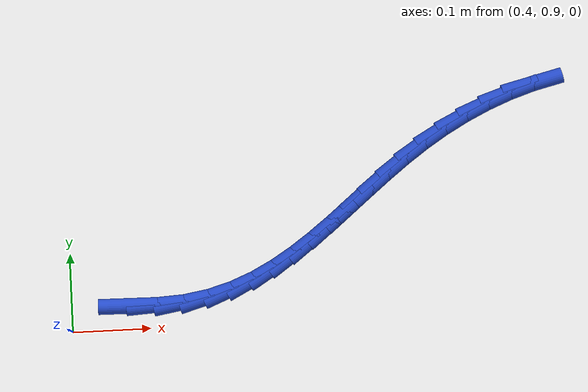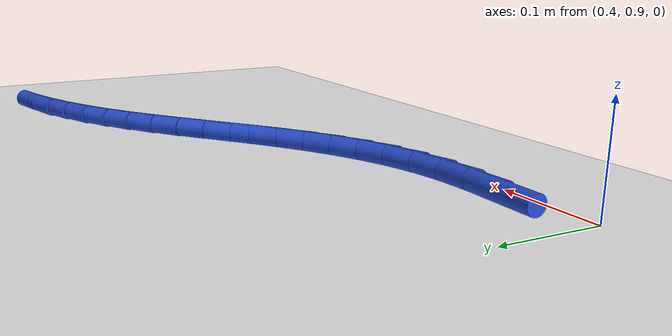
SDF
<sdf version="1.6">
 <world name="default">
  <model name="ground_plane">
   <static>1</static>
   <link name="link">
    <collision name="collision">
     <geometry><plane><normal>0 0 1</normal><size>100 100</size></plane></geometry>
     <surface><friction><ode><mu>100</mu><mu2>50</mu2></ode></friction></surface>
    </collision>
    <visual name="visual">
     <cast_shadows>0</cast_shadows>
     <geometry><plane><normal>0 0 1</normal><size>100 100</size></plane></geometry>
     <material>
      <script><uri>file://media/materials/scripts/gazebo.material</uri><name>Gazebo/WhiteGlow</name></script>
     </material>
    </visual>
   </link>
  </model>
  <model name="line">
   <link name="link_38">
    <pose>0.47411625837136084 0.9295470243335275 0.01 0 1.57 -0.01450029435183917</pose>
    <collision name="collision">
     <geometry><cylinder><radius>0.01</radius><length>0.08</length></cylinder></geometry>
    </collision>
    <visual name="visual">
     <material>
      <script><name>Gazebo/Blue</name><uri>file://media/materials/scripts/gazebo.material</uri></script>
     </material>
     <geometry><cylinder><radius>0.01</radius><length>0.08</length></cylinder></geometry>
    </visual>
   </link>
   <link name="link_39">
    <pose>0.5096491783543373 0.9290317504205082 0.01 0 1.57 0.05441502153179256</pose>
    <collision name="collision">
     <geometry><cylinder><radius>0.01</radius><length>0.08</length></cylinder></geometry>
    </collision>
    <visual name="visual">
     <material>
      <script><name>Gazebo/Blue</name><uri>file://media/materials/scripts/gazebo.material</uri></script>
     </material>
     <geometry><cylinder><radius>0.01</radius><length>0.08</length></cylinder></geometry>
    </visual>
   </link>
   <link name="link_40">
    <pose>0.5440150556973586 0.9309036182710717 0.01 0 1.57 0.16369060617507925</pose>
    <collision name="collision">
     <geometry><cylinder><radius>0.01</radius><length>0.08</length></cylinder></geometry>
    </collision>
    <visual name="visual">
     <material>
      <script><name>Gazebo/Blue</name><uri>file://media/materials/scripts/gazebo.material</uri></script>
     </material>
     <geometry><cylinder><radius>0.01</radius><length>0.08</length></cylinder></geometry>
    </visual>
   </link>
   <link name="link_41">
    <pose>0.5762229499386853 0.936223346449041 0.01 0 1.57 0.2773982860629447</pose>
    <collision name="collision">
     <geometry><cylinder><radius>0.01</radius><length>0.08</length></cylinder></geometry>
    </collision>
    <visual name="visual">
     <material>
      <script><name>Gazebo/Blue</name><uri>file://media/materials/scripts/gazebo.material</uri></script>
     </material>
     <geometry><cylinder><radius>0.01</radius><length>0.08</length></cylinder></geometry>
    </visual>
   </link>
   <link name="link_42">
    <pose>0.6063698418677874 0.9448073598574593 0.01 0 1.57 0.3830366115178532</pose>
    <collision name="collision">
     <geometry><cylinder><radius>0.01</radius><length>0.08</length></cylinder></geometry>
    </collision>
    <visual name="visual">
     <material>
      <script><name>Gazebo/Blue</name><uri>file://media/materials/scripts/gazebo.material</uri></script>
     </material>
     <geometry><cylinder><radius>0.01</radius><length>0.08</length></cylinder></geometry>
    </visual>
   </link>
   <link name="link_43">
    <pose>0.6347523489316713 0.9562437519579621 0.01 0 1.57 0.4760385590974551</pose>
    <collision name="collision">
     <geometry><cylinder><radius>0.01</radius><length>0.08</length></cylinder></geometry>
    </collision>
    <visual name="visual">
     <material>
      <script><name>Gazebo/Blue</name><uri>file://media/materials/scripts/gazebo.material</uri></script>
     </material>
     <geometry><cylinder><radius>0.01</radius><length>0.08</length></cylinder></geometry>
    </visual>
   </link>
   <link name="link_44">
    <pose>0.6616670885773418 0.9701206162121828 0.01 0 1.57 0.5534342682229622</pose>
    <collision name="collision">
     <geometry><cylinder><radius>0.01</radius><length>0.08</length></cylinder></geometry>
    </collision>
    <visual name="visual">
     <material>
      <script><name>Gazebo/Blue</name><uri>file://media/materials/scripts/gazebo.material</uri></script>
     </material>
     <geometry><cylinder><radius>0.01</radius><length>0.08</length></cylinder></geometry>
    </visual>
   </link>
   <link name="link_45">
    <pose>0.6874106782518049 0.9860260460817564 0.01 0 1.57 0.6137891139172305</pose>
    <collision name="collision">
     <geometry><cylinder><radius>0.01</radius><length>0.08</length></cylinder></geometry>
    </collision>
    <visual name="visual">
     <material>
      <script><name>Gazebo/Blue</name><uri>file://media/materials/scripts/gazebo.material</uri></script>
     </material>
     <geometry><cylinder><radius>0.01</radius><length>0.08</length></cylinder></geometry>
    </visual>
   </link>
   <link name="link_46">
    <pose>0.7122797354020655 1.0035481350283162 0.01 0 1.57 0.6567641380929898</pose>
    <collision name="collision">
     <geometry><cylinder><radius>0.01</radius><length>0.08</length></cylinder></geometry>
    </collision>
    <visual name="visual">
     <material>
      <script><name>Gazebo/Blue</name><uri>file://media/materials/scripts/gazebo.material</uri></script>
     </material>
     <geometry><cylinder><radius>0.01</radius><length>0.08</length></cylinder></geometry>
    </visual>
   </link>
   <link name="link_47">
    <pose>0.7365708774751294 1.022274976513497 0.01 0 1.57 0.6826097325852077</pose>
    <collision name="collision">
     <geometry><cylinder><radius>0.01</radius><length>0.08</length></cylinder></geometry>
    </collision>
    <visual name="visual">
     <material>
      <script><name>Gazebo/Blue</name><uri>file://media/materials/scripts/gazebo.material</uri></script>
     </material>
     <geometry><cylinder><radius>0.01</radius><length>0.08</length></cylinder></geometry>
    </visual>
   </link>
   <link name="link_48">
    <pose>0.7605807219180021 1.041794663998933 0.01 0 1.57 0.6917748233320972</pose>
    <collision name="collision">
     <geometry><cylinder><radius>0.01</radius><length>0.08</length></cylinder></geometry>
    </collision>
    <visual name="visual">
     <material>
      <script><name>Gazebo/Blue</name><uri>file://media/materials/scripts/gazebo.material</uri></script>
     </material>
     <geometry><cylinder><radius>0.01</radius><length>0.08</length></cylinder></geometry>
    </visual>
   </link>
   <link name="link_49">
    <pose>0.7846058861776888 1.061695290946258 0.01 0 1.57 0.6846822135992061</pose>
    <collision name="collision">
     <geometry><cylinder><radius>0.01</radius><length>0.08</length></cylinder></geometry>
    </collision>
    <visual name="visual">
     <material>
      <script><name>Gazebo/Blue</name><uri>file://media/materials/scripts/gazebo.material</uri></script>
     </material>
     <geometry><cylinder><radius>0.01</radius><length>0.08</length></cylinder></geometry>
    </visual>
   </link>
   <link name="link_50">
    <pose>0.8089429877011953 1.0815649508171068 0.01 0 1.57 0.661657547804356</pose>
    <collision name="collision">
     <geometry><cylinder><radius>0.01</radius><length>0.08</length></cylinder></geometry>
    </collision>
    <visual name="visual">
     <material>
      <script><name>Gazebo/Blue</name><uri>file://media/materials/scripts/gazebo.material</uri></script>
     </material>
     <geometry><cylinder><radius>0.01</radius><length>0.08</length></cylinder></geometry>
    </visual>
   </link>
   <link name="link_51">
    <pose>0.8338886439355269 1.1009917370731137 0.01 0 1.57 0.6229881840556644</pose>
    <collision name="collision">
     <geometry><cylinder><radius>0.01</radius><length>0.08</length></cylinder></geometry>
    </collision>
    <visual name="visual">
     <material>
      <script><name>Gazebo/Blue</name><uri>file://media/materials/scripts/gazebo.material</uri></script>
     </material>
     <geometry><cylinder><radius>0.01</radius><length>0.08</length></cylinder></geometry>
    </visual>
   </link>
   <link name="link_52">
    <pose>0.8597394723276888 1.1195637431759116 0.01 0 1.57 0.5698108738158983</pose>
    <collision name="collision">
     <geometry><cylinder><radius>0.01</radius><length>0.08</length></cylinder></geometry>
    </collision>
    <visual name="visual">
     <material>
      <script><name>Gazebo/Blue</name><uri>file://media/materials/scripts/gazebo.material</uri></script>
     </material>
     <geometry><cylinder><radius>0.01</radius><length>0.08</length></cylinder></geometry>
    </visual>
   </link>
   <link name="link_53">
    <pose>0.886765340036985 1.1368792641053522 0.01 0 1.57 0.5104150709255817</pose>
    <collision name="collision">
     <geometry><cylinder><radius>0.01</radius><length>0.08</length></cylinder></geometry>
    </collision>
    <visual name="visual">
     <material>
      <script><name>Gazebo/Blue</name><uri>file://media/materials/scripts/gazebo.material</uri></script>
     </material>
     <geometry><cylinder><radius>0.01</radius><length>0.08</length></cylinder></geometry>
    </visual>
   </link>
   <link name="link_54">
    <pose>0.9149348564074614 1.1526514828426513 0.01 0 1.57 0.4489262834717283</pose>
    <collision name="collision">
     <geometry><cylinder><radius>0.01</radius><length>0.08</length></cylinder></geometry>
    </collision>
    <visual name="visual">
     <material>
      <script><name>Gazebo/Blue</name><uri>file://media/materials/scripts/gazebo.material</uri></script>
     </material>
     <geometry><cylinder><radius>0.01</radius><length>0.08</length></cylinder></geometry>
    </visual>
   </link>
   <link name="link_55">
    <pose>0.9440267863431491 1.1666659816469163 0.01 0 1.57 0.38418868727455163</pose>
    <collision name="collision">
     <geometry><cylinder><radius>0.01</radius><length>0.08</length></cylinder></geometry>
    </collision>
    <visual name="visual">
     <material>
      <script><name>Gazebo/Blue</name><uri>file://media/materials/scripts/gazebo.material</uri></script>
     </material>
     <geometry><cylinder><radius>0.01</radius><length>0.08</length></cylinder></geometry>
    </visual>
   </link>
   <link name="link_56">
    <pose>0.9738169274932803 1.1787094743727071 0.01 0 1.57 0.3149296244148767</pose>
    <collision name="collision">
     <geometry><cylinder><radius>0.01</radius><length>0.08</length></cylinder></geometry>
    </collision>
    <visual name="visual">
     <material>
      <script><name>Gazebo/Blue</name><uri>file://media/materials/scripts/gazebo.material</uri></script>
     </material>
     <geometry><cylinder><radius>0.01</radius><length>0.08</length></cylinder></geometry>
    </visual>
   </link>
   <link name="link_57">
    <pose>1.0040810775070872 1.1885686748745825 0.01 0 1.57 0.2398252100839454</pose>
    <collision name="collision">
     <geometry><cylinder><radius>0.01</radius><length>0.08</length></cylinder></geometry>
    </collision>
    <visual name="visual">
     <material>
      <script><name>Gazebo/Blue</name><uri>file://media/materials/scripts/gazebo.material</uri></script>
     </material>
     <geometry><cylinder><radius>0.01</radius><length>0.08</length></cylinder></geometry>
    </visual>
   </link>
  </model>
 </world>
</sdf>
